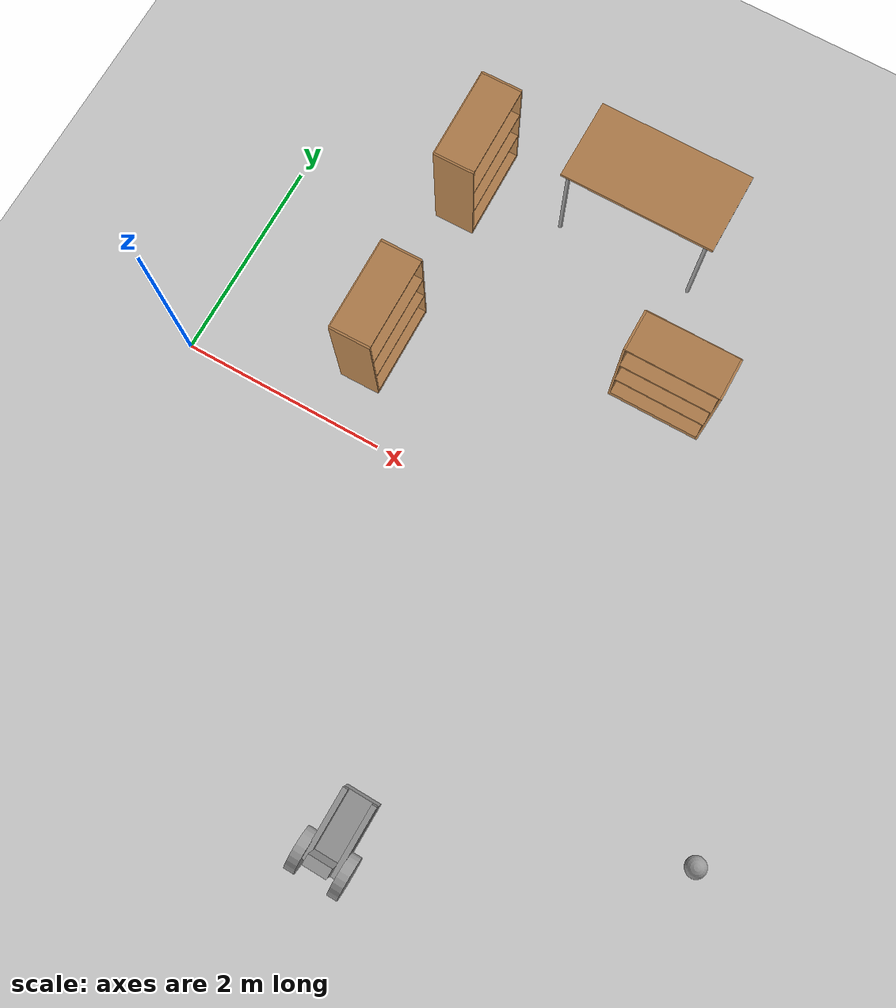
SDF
<sdf version="1.6">
 <world name="default">
  <model name="ground_plane">
   <static>1</static>
   <link name="link">
    <collision name="collision">
     <geometry><plane><normal>0 0 1</normal><size>100 100</size></plane></geometry>
     <surface><friction><ode><mu>100</mu><mu2>50</mu2></ode></friction></surface>
    </collision>
    <visual name="visual">
     <cast_shadows>0</cast_shadows>
     <geometry><plane><normal>0 0 1</normal><size>100 100</size></plane></geometry>
     <material>
      <script><uri>file://media/materials/scripts/gazebo.material</uri><name>Gazebo/Grey</name></script>
     </material>
    </visual>
   </link>
  </model>
  <model name="bookshelf">
   <static>1</static>
   <link name="link">
    <inertial><mass>1</mass></inertial>
    <collision name="back">
     <pose>0 0.005 0.6 0 -0 0</pose>
     <geometry><box><size>0.9 0.01 1.2</size></box></geometry>
    </collision>
    <visual name="visual1">
     <pose>0 0.005 0.6 0 -0 0</pose>
     <geometry><box><size>0.9 0.01 1.2</size></box></geometry>
     <material>
      <script><uri>file://media/materials/scripts/gazebo.material</uri><name>Gazebo/Wood</name></script>
     </material>
    </visual>
    <collision name="left_side">
     <pose>0.45 -0.195 0.6 0 -0 0</pose>
     <geometry><box><size>0.02 0.4 1.2</size></box></geometry>
    </collision>
    <visual name="visual2">
     <pose>0.45 -0.195 0.6 0 -0 0</pose>
     <geometry><box><size>0.02 0.4 1.2</size></box></geometry>
     <material>
      <script><uri>file://media/materials/scripts/gazebo.material</uri><name>Gazebo/Wood</name></script>
     </material>
    </visual>
    <collision name="right_side">
     <pose>-0.45 -0.195 0.6 0 -0 0</pose>
     <geometry><box><size>0.02 0.4 1.2</size></box></geometry>
    </collision>
    <visual name="visual3">
     <pose>-0.45 -0.195 0.6 0 -0 0</pose>
     <geometry><box><size>0.02 0.4 1.2</size></box></geometry>
     <material>
      <script><uri>file://media/materials/scripts/gazebo.material</uri><name>Gazebo/Wood</name></script>
     </material>
    </visual>
    <collision name="bottom">
     <pose>0 -0.195 0.03 0 -0 0</pose>
     <geometry><box><size>0.88 0.4 0.06</size></box></geometry>
    </collision>
    <visual name="visual4">
     <pose>0 -0.195 0.03 0 -0 0</pose>
     <geometry><box><size>0.88 0.4 0.06</size></box></geometry>
     <material>
      <script><uri>file://media/materials/scripts/gazebo.material</uri><name>Gazebo/Wood</name></script>
     </material>
    </visual>
    <collision name="top">
     <pose>0 -0.195 1.19 0 -0 0</pose>
     <geometry><box><size>0.88 0.4 0.02</size></box></geometry>
    </collision>
    <visual name="visual5">
     <pose>0 -0.195 1.19 0 -0 0</pose>
     <geometry><box><size>0.88 0.4 0.02</size></box></geometry>
     <material>
      <script><uri>file://media/materials/scripts/gazebo.material</uri><name>Gazebo/Wood</name></script>
     </material>
    </visual>
    <collision name="low_shelf">
     <pose>0 -0.195 0.43 0 -0 0</pose>
     <geometry><box><size>0.88 0.4 0.02</size></box></geometry>
    </collision>
    <visual name="visual6">
     <pose>0 -0.195 0.43 0 -0 0</pose>
     <geometry><box><size>0.88 0.4 0.02</size></box></geometry>
     <material>
      <script><uri>file://media/materials/scripts/gazebo.material</uri><name>Gazebo/Wood</name></script>
     </material>
    </visual>
    <collision name="high_shelf">
     <pose>0 -0.195 0.8 0 -0 0</pose>
     <geometry><box><size>0.88 0.4 0.02</size></box></geometry>
    </collision>
    <visual name="visual7">
     <pose>0 -0.195 0.8 0 -0 0</pose>
     <geometry><box><size>0.88 0.4 0.02</size></box></geometry>
     <material>
      <script><uri>file://media/materials/scripts/gazebo.material</uri><name>Gazebo/Wood</name></script>
     </material>
    </visual>
   </link>
   <pose>1.33392 2.73117 0 0 -0 1.58719</pose>
  </model>
  <model name="bookshelf_0">
   <static>1</static>
   <link name="link">
    <inertial><mass>1</mass></inertial>
    <collision name="back">
     <pose>0 0.005 0.6 0 -0 0</pose>
     <geometry><box><size>0.9 0.01 1.2</size></box></geometry>
    </collision>
    <visual name="visual1">
     <pose>0 0.005 0.6 0 -0 0</pose>
     <geometry><box><size>0.9 0.01 1.2</size></box></geometry>
     <material>
      <script><uri>file://media/materials/scripts/gazebo.material</uri><name>Gazebo/Wood</name></script>
     </material>
    </visual>
    <collision name="left_side">
     <pose>0.45 -0.195 0.6 0 -0 0</pose>
     <geometry><box><size>0.02 0.4 1.2</size></box></geometry>
    </collision>
    <visual name="visual2">
     <pose>0.45 -0.195 0.6 0 -0 0</pose>
     <geometry><box><size>0.02 0.4 1.2</size></box></geometry>
     <material>
      <script><uri>file://media/materials/scripts/gazebo.material</uri><name>Gazebo/Wood</name></script>
     </material>
    </visual>
    <collision name="right_side">
     <pose>-0.45 -0.195 0.6 0 -0 0</pose>
     <geometry><box><size>0.02 0.4 1.2</size></box></geometry>
    </collision>
    <visual name="visual3">
     <pose>-0.45 -0.195 0.6 0 -0 0</pose>
     <geometry><box><size>0.02 0.4 1.2</size></box></geometry>
     <material>
      <script><uri>file://media/materials/scripts/gazebo.material</uri><name>Gazebo/Wood</name></script>
     </material>
    </visual>
    <collision name="bottom">
     <pose>0 -0.195 0.03 0 -0 0</pose>
     <geometry><box><size>0.88 0.4 0.06</size></box></geometry>
    </collision>
    <visual name="visual4">
     <pose>0 -0.195 0.03 0 -0 0</pose>
     <geometry><box><size>0.88 0.4 0.06</size></box></geometry>
     <material>
      <script><uri>file://media/materials/scripts/gazebo.material</uri><name>Gazebo/Wood</name></script>
     </material>
    </visual>
    <collision name="top">
     <pose>0 -0.195 1.19 0 -0 0</pose>
     <geometry><box><size>0.88 0.4 0.02</size></box></geometry>
    </collision>
    <visual name="visual5">
     <pose>0 -0.195 1.19 0 -0 0</pose>
     <geometry><box><size>0.88 0.4 0.02</size></box></geometry>
     <material>
      <script><uri>file://media/materials/scripts/gazebo.material</uri><name>Gazebo/Wood</name></script>
     </material>
    </visual>
    <collision name="low_shelf">
     <pose>0 -0.195 0.43 0 -0 0</pose>
     <geometry><box><size>0.88 0.4 0.02</size></box></geometry>
    </collision>
    <visual name="visual6">
     <pose>0 -0.195 0.43 0 -0 0</pose>
     <geometry><box><size>0.88 0.4 0.02</size></box></geometry>
     <material>
      <script><uri>file://media/materials/scripts/gazebo.material</uri><name>Gazebo/Wood</name></script>
     </material>
    </visual>
    <collision name="high_shelf">
     <pose>0 -0.195 0.8 0 -0 0</pose>
     <geometry><box><size>0.88 0.4 0.02</size></box></geometry>
    </collision>
    <visual name="visual7">
     <pose>0 -0.195 0.8 0 -0 0</pose>
     <geometry><box><size>0.88 0.4 0.02</size></box></geometry>
     <material>
      <script><uri>file://media/materials/scripts/gazebo.material</uri><name>Gazebo/Wood</name></script>
     </material>
    </visual>
   </link>
   <pose>1.35932 0.90663 0 0 -0 1.58307</pose>
  </model>
  <model name="bookshelf_1">
   <static>1</static>
   <link name="link">
    <inertial><mass>1</mass></inertial>
    <collision name="back">
     <pose>0 0.005 0.6 0 -0 0</pose>
     <geometry><box><size>0.9 0.01 1.2</size></box></geometry>
    </collision>
    <visual name="visual1">
     <pose>0 0.005 0.6 0 -0 0</pose>
     <geometry><box><size>0.9 0.01 1.2</size></box></geometry>
     <material>
      <script><uri>file://media/materials/scripts/gazebo.material</uri><name>Gazebo/Wood</name></script>
     </material>
    </visual>
    <collision name="left_side">
     <pose>0.45 -0.195 0.6 0 -0 0</pose>
     <geometry><box><size>0.02 0.4 1.2</size></box></geometry>
    </collision>
    <visual name="visual2">
     <pose>0.45 -0.195 0.6 0 -0 0</pose>
     <geometry><box><size>0.02 0.4 1.2</size></box></geometry>
     <material>
      <script><uri>file://media/materials/scripts/gazebo.material</uri><name>Gazebo/Wood</name></script>
     </material>
    </visual>
    <collision name="right_side">
     <pose>-0.45 -0.195 0.6 0 -0 0</pose>
     <geometry><box><size>0.02 0.4 1.2</size></box></geometry>
    </collision>
    <visual name="visual3">
     <pose>-0.45 -0.195 0.6 0 -0 0</pose>
     <geometry><box><size>0.02 0.4 1.2</size></box></geometry>
     <material>
      <script><uri>file://media/materials/scripts/gazebo.material</uri><name>Gazebo/Wood</name></script>
     </material>
    </visual>
    <collision name="bottom">
     <pose>0 -0.195 0.03 0 -0 0</pose>
     <geometry><box><size>0.88 0.4 0.06</size></box></geometry>
    </collision>
    <visual name="visual4">
     <pose>0 -0.195 0.03 0 -0 0</pose>
     <geometry><box><size>0.88 0.4 0.06</size></box></geometry>
     <material>
      <script><uri>file://media/materials/scripts/gazebo.material</uri><name>Gazebo/Wood</name></script>
     </material>
    </visual>
    <collision name="top">
     <pose>0 -0.195 1.19 0 -0 0</pose>
     <geometry><box><size>0.88 0.4 0.02</size></box></geometry>
    </collision>
    <visual name="visual5">
     <pose>0 -0.195 1.19 0 -0 0</pose>
     <geometry><box><size>0.88 0.4 0.02</size></box></geometry>
     <material>
      <script><uri>file://media/materials/scripts/gazebo.material</uri><name>Gazebo/Wood</name></script>
     </material>
    </visual>
    <collision name="low_shelf">
     <pose>0 -0.195 0.43 0 -0 0</pose>
     <geometry><box><size>0.88 0.4 0.02</size></box></geometry>
    </collision>
    <visual name="visual6">
     <pose>0 -0.195 0.43 0 -0 0</pose>
     <geometry><box><size>0.88 0.4 0.02</size></box></geometry>
     <material>
      <script><uri>file://media/materials/scripts/gazebo.material</uri><name>Gazebo/Wood</name></script>
     </material>
    </visual>
    <collision name="high_shelf">
     <pose>0 -0.195 0.8 0 -0 0</pose>
     <geometry><box><size>0.88 0.4 0.02</size></box></geometry>
    </collision>
    <visual name="visual7">
     <pose>0 -0.195 0.8 0 -0 0</pose>
     <geometry><box><size>0.88 0.4 0.02</size></box></geometry>
     <material>
      <script><uri>file://media/materials/scripts/gazebo.material</uri><name>Gazebo/Wood</name></script>
     </material>
    </visual>
   </link>
   <pose>4.06711 1.88244 0 0 -0 0</pose>
  </model>
  <model name="table">
   <static>1</static>
   <link name="link">
    <collision name="surface">
     <pose>0 0 1 0 -0 0</pose>
     <geometry><box><size>1.5 0.8 0.03</size></box></geometry>
     <surface><friction><ode><mu>0.6</mu><mu2>0.6</mu2></ode></friction></surface>
    </collision>
    <visual name="visual1">
     <pose>0 0 1 0 -0 0</pose>
     <geometry><box><size>1.5 0.8 0.03</size></box></geometry>
     <material>
      <script><uri>file://media/materials/scripts/gazebo.material</uri><name>Gazebo/Wood</name></script>
     </material>
    </visual>
    <collision name="front_left_leg">
     <pose>0.68 0.38 0.5 0 -0 0</pose>
     <geometry><cylinder><radius>0.02</radius><length>1</length></cylinder></geometry>
    </collision>
    <visual name="front_left_leg">
     <pose>0.68 0.38 0.5 0 -0 0</pose>
     <geometry><cylinder><radius>0.02</radius><length>1</length></cylinder></geometry>
     <material>
      <script><uri>file://media/materials/scripts/gazebo.material</uri><name>Gazebo/Grey</name></script>
     </material>
    </visual>
    <collision name="front_right_leg">
     <pose>0.68 -0.38 0.5 0 -0 0</pose>
     <geometry><cylinder><radius>0.02</radius><length>1</length></cylinder></geometry>
    </collision>
    <visual name="front_right_leg">
     <pose>0.68 -0.38 0.5 0 -0 0</pose>
     <geometry><cylinder><radius>0.02</radius><length>1</length></cylinder></geometry>
     <material>
      <script><uri>file://media/materials/scripts/gazebo.material</uri><name>Gazebo/Grey</name></script>
     </material>
    </visual>
    <collision name="back_right_leg">
     <pose>-0.68 -0.38 0.5 0 -0 0</pose>
     <geometry><cylinder><radius>0.02</radius><length>1</length></cylinder></geometry>
    </collision>
    <visual name="back_right_leg">
     <pose>-0.68 -0.38 0.5 0 -0 0</pose>
     <geometry><cylinder><radius>0.02</radius><length>1</length></cylinder></geometry>
     <material>
      <script><uri>file://media/materials/scripts/gazebo.material</uri><name>Gazebo/Grey</name></script>
     </material>
    </visual>
    <collision name="back_left_leg">
     <pose>-0.68 0.38 0.5 0 -0 0</pose>
     <geometry><cylinder><radius>0.02</radius><length>1</length></cylinder></geometry>
    </collision>
    <visual name="back_left_leg">
     <pose>-0.68 0.38 0.5 0 -0 0</pose>
     <geometry><cylinder><radius>0.02</radius><length>1</length></cylinder></geometry>
     <material>
      <script><uri>file://media/materials/scripts/gazebo.material</uri><name>Gazebo/Grey</name></script>
     </material>
    </visual>
   </link>
   <pose>3.11282 3.13579 0 0 -0 0</pose>
  </model>
  <model name="EmpressMobile_0">
   <link name="main_chassis">
    <inertial>
     <mass>1</mass>
     <inertia>
      <ixx>0.166667</ixx>
      <ixy>0</ixy>
      <ixz>0</ixz>
      <iyy>0.166667</iyy>
      <iyz>0</iyz>
      <izz>0.166667</izz>
     </inertia>
    </inertial>
    <visual name="bed_visual">
     <geometry><box><size>0.666667 0.333333 0.2</size></box></geometry>
     <material>
      <lighting>1</lighting>
      <script><uri>file://media/materials/scripts/gazebo.material</uri><name>Gazebo/Grey</name></script>
      <shader type="pixel"><normal_map>__default__</normal_map></shader>
      <ambient>0.3 0.3 0.3 1</ambient>
      <diffuse>0.7 0.7 0.7 1</diffuse>
      <specular>0.01 0.01 0.01 1</specular>
      <emissive>0 0 0 1</emissive>
     </material>
    </visual>
    <visual name="caster_visual">
     <pose>0.195335 -0.005477 -0.1 0 -0 0</pose>
     <geometry><sphere><radius>0.1</radius></sphere></geometry>
     <material><shader type="pixel"><normal_map>__default__</normal_map></shader></material>
    </visual>
    <visual name="throne_right_armrest_visual">
     <pose>0 -0.139087 0.15 0 -0 0</pose>
     <geometry><box><size>0.666667 0.05 0.1</size></box></geometry>
     <material>
      <lighting>1</lighting>
      <script><uri>file://media/materials/scripts/gazebo.material</uri><name>Gazebo/Grey</name></script>
      <shader type="pixel"><normal_map>__default__</normal_map></shader>
      <ambient>0.3 0.3 0.3 1</ambient>
      <diffuse>0.7 0.7 0.7 1</diffuse>
      <specular>0.01 0.01 0.01 1</specular>
      <emissive>0 0 0 1</emissive>
     </material>
    </visual>
    <visual name="throne_left_armrest_visual">
     <pose>0 0.140913 0.15 0 -0 0</pose>
     <geometry><box><size>0.666667 0.05 0.1</size></box></geometry>
     <material>
      <lighting>1</lighting>
      <script><uri>file://media/materials/scripts/gazebo.material</uri><name>Gazebo/Grey</name></script>
      <shader type="pixel"><normal_map>__default__</normal_map></shader>
      <ambient>0.3 0.3 0.3 1</ambient>
      <diffuse>0.7 0.7 0.7 1</diffuse>
      <specular>0.01 0.01 0.01 1</specular>
      <emissive>0 0 0 1</emissive>
     </material>
    </visual>
    <visual name="throne_backrest_visual">
     <pose>-0.28 0.000913 0.25 0 -0 0</pose>
     <geometry><box><size>0.1 0.233333 0.333333</size></box></geometry>
     <material>
      <lighting>1</lighting>
      <script><uri>file://media/materials/scripts/gazebo.material</uri><name>Gazebo/Grey</name></script>
      <shader type="pixel"><normal_map>__default__</normal_map></shader>
      <ambient>0.3 0.3 0.3 1</ambient>
      <diffuse>0.7 0.7 0.7 1</diffuse>
      <specular>0.01 0.01 0.01 1</specular>
      <emissive>0 0 0 1</emissive>
     </material>
    </visual>
    <collision name="bed_collision">
     <geometry><box><size>0.666667 0.333333 0.2</size></box></geometry>
     <surface>
      <friction>
       <ode><mu>1</mu><mu2>1</mu2><fdir1>0 0 0</fdir1><slip1>0</slip1><slip2>0</slip2></ode>
       <torsional>
        <coefficient>1</coefficient>
        <patch_radius>0</patch_radius>
        <surface_radius>0</surface_radius>
        <use_patch_radius>1</use_patch_radius>
        <ode><slip>0</slip></ode>
       </torsional>
      </friction>
      <bounce><restitution_coefficient>0</restitution_coefficient><threshold>1e+06</threshold></bounce>
      <contact>
       <collide_without_contact>0</collide_without_contact>
       <collide_without_contact_bitmask>1</collide_without_contact_bitmask>
       <collide_bitmask>1</collide_bitmask>
       <ode>
        <soft_cfm>0</soft_cfm>
        <soft_erp>0.2</soft_erp>
        <kp>1e+13</kp>
        <kd>1</kd>
        <max_vel>0.01</max_vel>
        <min_depth>0</min_depth>
       </ode>
       <bullet>
        <split_impulse>1</split_impulse>
        <split_impulse_penetration_threshold>-0.01</split_impulse_penetration_threshold>
        <soft_cfm>0</soft_cfm>
        <soft_erp>0.2</soft_erp>
        <kp>1e+13</kp>
        <kd>1</kd>
       </bullet>
      </contact>
     </surface>
    </collision>
    <collision name="caster_collision">
     <pose>0.195335 -0.005477 -0.1 0 -0 0</pose>
     <geometry><sphere><radius>0.1</radius></sphere></geometry>
     <surface>
      <friction>
       <ode><mu>0</mu><mu2>0</mu2><fdir1>0 0 0</fdir1><slip1>1</slip1><slip2>1</slip2></ode>
       <torsional>
        <coefficient>1</coefficient>
        <patch_radius>0</patch_radius>
        <surface_radius>0</surface_radius>
        <use_patch_radius>1</use_patch_radius>
        <ode><slip>0</slip></ode>
       </torsional>
      </friction>
      <bounce><restitution_coefficient>0</restitution_coefficient><threshold>1e+06</threshold></bounce>
      <contact>
       <collide_without_contact>0</collide_without_contact>
       <collide_without_contact_bitmask>1</collide_without_contact_bitmask>
       <collide_bitmask>1</collide_bitmask>
       <ode>
        <soft_cfm>0</soft_cfm>
        <soft_erp>0.2</soft_erp>
        <kp>1e+13</kp>
        <kd>1</kd>
        <max_vel>0.01</max_vel>
        <min_depth>0</min_depth>
       </ode>
       <bullet>
        <split_impulse>1</split_impulse>
        <split_impulse_penetration_threshold>-0.01</split_impulse_penetration_threshold>
        <soft_cfm>0</soft_cfm>
        <soft_erp>0.2</soft_erp>
        <kp>1e+13</kp>
        <kd>1</kd>
       </bullet>
      </contact>
     </surface>
    </collision>
    <collision name="throne_right_armrest_collision">
     <pose>0 -0.139087 0.15 0 -0 0</pose>
     <geometry><box><size>0.666667 0.05 0.1</size></box></geometry>
     <surface>
      <friction>
       <ode><mu>1</mu><mu2>1</mu2><fdir1>0 0 0</fdir1><slip1>0</slip1><slip2>0</slip2></ode>
       <torsional>
        <coefficient>1</coefficient>
        <patch_radius>0</patch_radius>
        <surface_radius>0</surface_radius>
        <use_patch_radius>1</use_patch_radius>
        <ode><slip>0</slip></ode>
       </torsional>
      </friction>
      <bounce><restitution_coefficient>0</restitution_coefficient><threshold>1e+06</threshold></bounce>
      <contact>
       <collide_without_contact>0</collide_without_contact>
       <collide_without_contact_bitmask>1</collide_without_contact_bitmask>
       <collide_bitmask>1</collide_bitmask>
       <ode>
        <soft_cfm>0</soft_cfm>
        <soft_erp>0.2</soft_erp>
        <kp>1e+13</kp>
        <kd>1</kd>
        <max_vel>0.01</max_vel>
        <min_depth>0</min_depth>
       </ode>
       <bullet>
        <split_impulse>1</split_impulse>
        <split_impulse_penetration_threshold>-0.01</split_impulse_penetration_threshold>
        <soft_cfm>0</soft_cfm>
        <soft_erp>0.2</soft_erp>
        <kp>1e+13</kp>
        <kd>1</kd>
       </bullet>
      </contact>
     </surface>
    </collision>
    <collision name="throne_left_armrest_collision">
     <pose>0 0.140913 0.15 0 -0 0</pose>
     <geometry><box><size>0.666667 0.05 0.1</size></box></geometry>
     <surface>
      <friction>
       <ode><mu>1</mu><mu2>1</mu2><fdir1>0 0 0</fdir1><slip1>0</slip1><slip2>0</slip2></ode>
       <torsional>
        <coefficient>1</coefficient>
        <patch_radius>0</patch_radius>
        <surface_radius>0</surface_radius>
        <use_patch_radius>1</use_patch_radius>
        <ode><slip>0</slip></ode>
       </torsional>
      </friction>
      <bounce><restitution_coefficient>0</restitution_coefficient><threshold>1e+06</threshold></bounce>
      <contact>
       <collide_without_contact>0</collide_without_contact>
       <collide_without_contact_bitmask>1</collide_without_contact_bitmask>
       <collide_bitmask>1</collide_bitmask>
       <ode>
        <soft_cfm>0</soft_cfm>
        <soft_erp>0.2</soft_erp>
        <kp>1e+13</kp>
        <kd>1</kd>
        <max_vel>0.01</max_vel>
        <min_depth>0</min_depth>
       </ode>
       <bullet>
        <split_impulse>1</split_impulse>
        <split_impulse_penetration_threshold>-0.01</split_impulse_penetration_threshold>
        <soft_cfm>0</soft_cfm>
        <soft_erp>0.2</soft_erp>
        <kp>1e+13</kp>
        <kd>1</kd>
       </bullet>
      </contact>
     </surface>
    </collision>
    <collision name="throne_backrest_collision">
     <pose>-0.28 0.000913 0.25 0 -0 0</pose>
     <geometry><box><size>0.1 0.233333 0.333333</size></box></geometry>
     <surface>
      <friction>
       <ode><mu>1</mu><mu2>1</mu2><fdir1>0 0 0</fdir1><slip1>0</slip1><slip2>0</slip2></ode>
       <torsional>
        <coefficient>1</coefficient>
        <patch_radius>0</patch_radius>
        <surface_radius>0</surface_radius>
        <use_patch_radius>1</use_patch_radius>
        <ode><slip>0</slip></ode>
       </torsional>
      </friction>
      <bounce><restitution_coefficient>0</restitution_coefficient><threshold>1e+06</threshold></bounce>
      <contact>
       <collide_without_contact>0</collide_without_contact>
       <collide_without_contact_bitmask>1</collide_without_contact_bitmask>
       <collide_bitmask>1</collide_bitmask>
       <ode>
        <soft_cfm>0</soft_cfm>
        <soft_erp>0.2</soft_erp>
        <kp>1e+13</kp>
        <kd>1</kd>
        <max_vel>0.01</max_vel>
        <min_depth>0</min_depth>
       </ode>
       <bullet>
        <split_impulse>1</split_impulse>
        <split_impulse_penetration_threshold>-0.01</split_impulse_penetration_threshold>
        <soft_cfm>0</soft_cfm>
        <soft_erp>0.2</soft_erp>
        <kp>1e+13</kp>
        <kd>1</kd>
       </bullet>
      </contact>
     </surface>
    </collision>
   </link>
   <link name="left_wheel">
    <pose>-0.3 0.21 0.05 1.5708 -0 0</pose>
    <inertial>
     <mass>1</mass>
     <inertia><ixx>0.145833</ixx><ixy>0</ixy><ixz>0</ixz><iyy>0.145833</iyy><iyz>0</iyz><izz>0.125</izz></inertia>
    </inertial>
    <visual name="visual">
     <geometry><cylinder><radius>0.2</radius><length>0.1</length></cylinder></geometry>
     <material>
      <lighting>1</lighting>
      <script><uri>file://media/materials/scripts/gazebo.material</uri><name>Gazebo/Grey</name></script>
      <shader type="pixel"><normal_map>__default__</normal_map></shader>
      <ambient>0.3 0.3 0.3 1</ambient>
      <diffuse>0.7 0.7 0.7 1</diffuse>
      <specular>0.01 0.01 0.01 1</specular>
      <emissive>0 0 0 1</emissive>
     </material>
    </visual>
    <collision name="collision">
     <geometry><cylinder><radius>0.2</radius><length>0.1</length></cylinder></geometry>
     <surface>
      <friction>
       <ode><mu>1</mu><mu2>1</mu2><fdir1>0 0 0</fdir1><slip1>0</slip1><slip2>0</slip2></ode>
       <torsional>
        <coefficient>1</coefficient>
        <patch_radius>0</patch_radius>
        <surface_radius>0</surface_radius>
        <use_patch_radius>1</use_patch_radius>
        <ode><slip>0</slip></ode>
       </torsional>
      </friction>
      <bounce><restitution_coefficient>0</restitution_coefficient><threshold>1e+06</threshold></bounce>
      <contact>
       <collide_without_contact>0</collide_without_contact>
       <collide_without_contact_bitmask>1</collide_without_contact_bitmask>
       <collide_bitmask>1</collide_bitmask>
       <ode>
        <soft_cfm>0</soft_cfm>
        <soft_erp>0.2</soft_erp>
        <kp>1e+13</kp>
        <kd>1</kd>
        <max_vel>0.01</max_vel>
        <min_depth>0</min_depth>
       </ode>
       <bullet>
        <split_impulse>1</split_impulse>
        <split_impulse_penetration_threshold>-0.01</split_impulse_penetration_threshold>
        <soft_cfm>0</soft_cfm>
        <soft_erp>0.2</soft_erp>
        <kp>1e+13</kp>
        <kd>1</kd>
       </bullet>
      </contact>
     </surface>
    </collision>
   </link>
   <link name="right_wheel">
    <pose>-0.3 -0.21 0.05 1.5708 -0 0</pose>
    <inertial>
     <mass>1</mass>
     <inertia><ixx>0.145833</ixx><ixy>0</ixy><ixz>0</ixz><iyy>0.145833</iyy><iyz>0</iyz><izz>0.125</izz></inertia>
    </inertial>
    <visual name="visual">
     <geometry><cylinder><radius>0.2</radius><length>0.1</length></cylinder></geometry>
     <material>
      <lighting>1</lighting>
      <script><uri>file://media/materials/scripts/gazebo.material</uri><name>Gazebo/Grey</name></script>
      <shader type="pixel"><normal_map>__default__</normal_map></shader>
      <ambient>0.3 0.3 0.3 1</ambient>
      <diffuse>0.7 0.7 0.7 1</diffuse>
      <specular>0.01 0.01 0.01 1</specular>
      <emissive>0 0 0 1</emissive>
     </material>
    </visual>
    <collision name="collision">
     <geometry><cylinder><radius>0.2</radius><length>0.1</length></cylinder></geometry>
     <surface>
      <friction>
       <ode><mu>1</mu><mu2>1</mu2><fdir1>0 0 0</fdir1><slip1>0</slip1><slip2>0</slip2></ode>
       <torsional>
        <coefficient>1</coefficient>
        <patch_radius>0</patch_radius>
        <surface_radius>0</surface_radius>
        <use_patch_radius>1</use_patch_radius>
        <ode><slip>0</slip></ode>
       </torsional>
      </friction>
      <bounce><restitution_coefficient>0</restitution_coefficient><threshold>1e+06</threshold></bounce>
      <contact>
       <collide_without_contact>0</collide_without_contact>
       <collide_without_contact_bitmask>1</collide_without_contact_bitmask>
       <collide_bitmask>1</collide_bitmask>
       <ode>
        <soft_cfm>0</soft_cfm>
        <soft_erp>0.2</soft_erp>
        <kp>1e+13</kp>
        <kd>1</kd>
        <max_vel>0.01</max_vel>
        <min_depth>0</min_depth>
       </ode>
       <bullet>
        <split_impulse>1</split_impulse>
        <split_impulse_penetration_threshold>-0.01</split_impulse_penetration_threshold>
        <soft_cfm>0</soft_cfm>
        <soft_erp>0.2</soft_erp>
        <kp>1e+13</kp>
        <kd>1</kd>
       </bullet>
      </contact>
     </surface>
    </collision>
   </link>
   <joint name="main_chassis_right_wheel_joint" type="revolute">
    <parent>main_chassis</parent>
    <child>right_wheel</child>
    <axis>
     <xyz>0 0 1</xyz>
     <use_parent_model_frame>0</use_parent_model_frame>
     <limit>
      <lower>-1.79769e+308</lower>
      <upper>1.79769e+308</upper>
      <effort>-1</effort>
      <velocity>-1</velocity>
     </limit>
     <dynamics>
      <spring_reference>0</spring_reference>
      <spring_stiffness>0</spring_stiffness>
      <damping>0</damping>
      <friction>0</friction>
     </dynamics>
    </axis>
    <physics>
     <ode><limit><cfm>0</cfm><erp>0.2</erp></limit><suspension><cfm>0</cfm><erp>0.2</erp></suspension></ode>
    </physics>
   </joint>
   <joint name="main_chassis_left_wheel_joint" type="revolute">
    <parent>main_chassis</parent>
    <child>left_wheel</child>
    <axis>
     <xyz>0 0 1</xyz>
     <use_parent_model_frame>0</use_parent_model_frame>
     <limit>
      <lower>-1.79769e+308</lower>
      <upper>1.79769e+308</upper>
      <effort>-1</effort>
      <velocity>-1</velocity>
     </limit>
     <dynamics>
      <spring_reference>0</spring_reference>
      <spring_stiffness>0</spring_stiffness>
      <damping>0</damping>
      <friction>0</friction>
     </dynamics>
    </axis>
    <physics>
     <ode><limit><cfm>0</cfm><erp>0.2</erp></limit><suspension><cfm>0</cfm><erp>0.2</erp></suspension></ode>
    </physics>
   </joint>
   <static>0</static>
   <pose>3.46066 -3.05242 0.18008 -2e-06 -0.099605 1.5482</pose>
  </model>
  <model name="my_ball">
   <link name="link_0">
    <inertial>
     <mass>1</mass>
     <inertia><ixx>0.1</ixx><ixy>0</ixy><ixz>0</ixz><iyy>0.1</iyy><iyz>0</iyz><izz>0.1</izz></inertia>
    </inertial>
    <visual name="visual">
     <geometry><sphere><radius>0.1</radius></sphere></geometry>
     <material>
      <lighting>1</lighting>
      <script><uri>file://media/materials/scripts/gazebo.material</uri><name>Gazebo/Grey</name></script>
      <shader type="pixel"><normal_map>__default__</normal_map></shader>
      <ambient>1 1 1 1</ambient>
      <diffuse>1 1 1 1</diffuse>
      <specular>1 1 1 1</specular>
      <emissive>1 1 1 1</emissive>
     </material>
    </visual>
    <collision name="collision">
     <geometry><sphere><radius>0.1</radius></sphere></geometry>
     <surface>
      <friction>
       <ode><mu>1</mu><mu2>1</mu2><fdir1>0 0 0</fdir1><slip1>0</slip1><slip2>0</slip2></ode>
       <torsional>
        <coefficient>1</coefficient>
        <patch_radius>0</patch_radius>
        <surface_radius>0</surface_radius>
        <use_patch_radius>1</use_patch_radius>
        <ode><slip>0</slip></ode>
       </torsional>
      </friction>
      <bounce><restitution_coefficient>0</restitution_coefficient><threshold>1e+06</threshold></bounce>
      <contact>
       <collide_without_contact>0</collide_without_contact>
       <collide_without_contact_bitmask>1</collide_without_contact_bitmask>
       <collide_bitmask>1</collide_bitmask>
       <ode>
        <soft_cfm>0</soft_cfm>
        <soft_erp>0.2</soft_erp>
        <kp>1e+13</kp>
        <kd>1</kd>
        <max_vel>0.01</max_vel>
        <min_depth>0</min_depth>
       </ode>
       <bullet>
        <split_impulse>1</split_impulse>
        <split_impulse_penetration_threshold>-0.01</split_impulse_penetration_threshold>
        <soft_cfm>0</soft_cfm>
        <soft_erp>0.2</soft_erp>
        <kp>1e+13</kp>
        <kd>1</kd>
       </bullet>
      </contact>
     </surface>
    </collision>
   </link>
   <static>0</static>
   <pose>6.18734 -1.87315 0.1 0 -0 0</pose>
  </model>
 </world>
</sdf>
